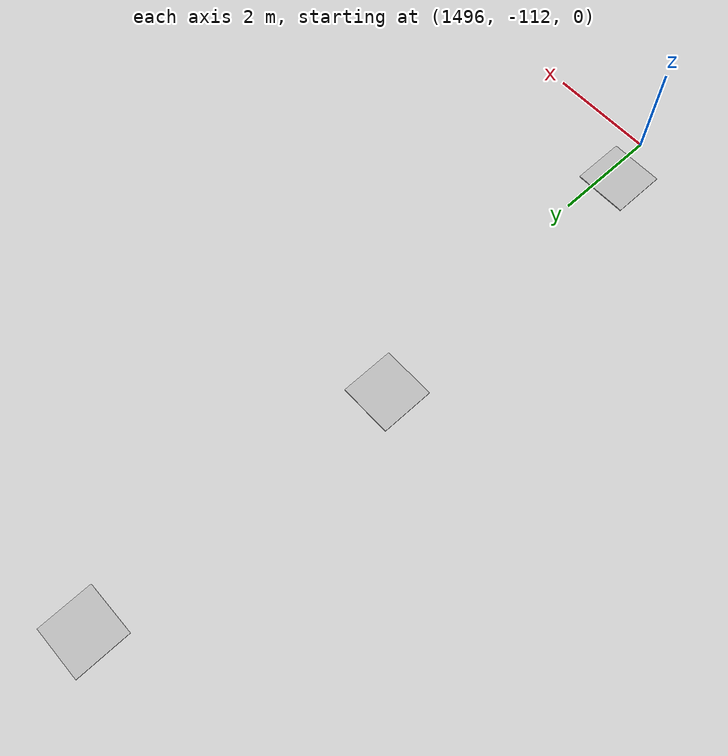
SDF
<sdf version="1.7">
 <world name="default">
  <light name="sun" type="directional">
   <pose>0 0 10 0 -0 0</pose>
   <diffuse>0.8 0.8 0.8 1</diffuse>
   <specular>0.2 0.2 0.2 1</specular>
   <attenuation>
    <range>1000</range>
    <constant>0.9</constant>
    <linear>0.01</linear>
    <quadratic>0.001</quadratic>
   </attenuation>
   <direction>-0.5 0.1 -0.9</direction>
   <spot><inner_angle>0</inner_angle><outer_angle>0</outer_angle><falloff>0</falloff></spot>
  </light>
  <model name="ground_plane">
   <static>1</static>
   <link name="link">
    <collision name="collision">
     <geometry><plane><normal>0 0 1</normal><size>100 100</size></plane></geometry>
     <surface><friction><ode><mu>100</mu><mu2>50</mu2></ode></friction></surface>
    </collision>
    <visual name="visual">
     <cast_shadows>0</cast_shadows>
     <geometry><plane><normal>0 0 1</normal><size>100 100</size></plane></geometry>
     <material>
      <script><uri>file://media/materials/scripts/gazebo.material</uri><name>Gazebo/Grey</name></script>
     </material>
    </visual>
   </link>
  </model>
  <gravity>0 0 -9.8</gravity>
  <magnetic_field>6e-06 2.3e-05 -4.2e-05</magnetic_field>
  <atmosphere type="adiabatic"/>
  <physics type="ode">
   <max_step_size>0.001</max_step_size>
   <real_time_factor>1</real_time_factor>
   <real_time_update_rate>1000</real_time_update_rate>
  </physics>
  <scene><ambient>0.4 0.4 0.4 1</ambient><background>0.7 0.7 0.7 1</background><shadows>1</shadows></scene>
  <spherical_coordinates>
   <surface_model>EARTH_WGS84</surface_model>
   <latitude_deg>0</latitude_deg>
   <longitude_deg>0</longitude_deg>
   <elevation>0</elevation>
   <heading_deg>0</heading_deg>
  </spherical_coordinates>
  <model name="target_green_clone">
   <static>1</static>
   <link name="link">
    <visual name="visual">
     <geometry><mesh><uri>model://target_green/meshes/brown.dae</uri><scale>1 4000 4000</scale></mesh></geometry>
    </visual>
   </link>
   <pose>0 0 -1 0 1.57 0</pose>
  </model>
  <model name="wooden_peg_board">
   <frame name="wooden_board::__model__" attached_to="wooden_board::base">
    <pose relative_to="__model__">0 0 0 0 -0 0</pose>
   </frame>
   <link name="wooden_board::base">
    <pose relative_to="wooden_board::__model__">0 0 0.00523 0 -0 0</pose>
    <inertial>
     <mass>0.2765</mass>
     <inertia>
      <ixx>0.0025148</ixx>
      <ixy>0</ixy>
      <ixz>0</ixz>
      <iyy>0.00024037</iyy>
      <iyz>0</iyz>
      <izz>0.00275013</izz>
     </inertia>
    </inertial>
    <collision name="collision">
     <geometry><box><size>0.1016 0.3302 0.01046</size></box></geometry>
     <surface>
      <contact>
       <poissons_ratio>0.347</poissons_ratio>
       <elastic_modulus>8.8e+09</elastic_modulus>
       <ode><kp>100000</kp><kd>100</kd><max_vel>100</max_vel><min_depth>0.001</min_depth></ode>
      </contact>
      <friction>
       <torsional>
        <coefficient>1</coefficient>
        <use_patch_radius>0</use_patch_radius>
        <surface_radius>0.01</surface_radius>
       </torsional>
      </friction>
     </surface>
    </collision>
    <visual name="visual">
     <geometry><box><size>0.1016 0.3302 0.01046</size></box></geometry>
     <material>
      <script><uri>file://media/materials/scripts/gazebo.material</uri><name>Gazebo/Wood</name></script>
     </material>
    </visual>
    <visual name="tee_nut_1">
     <pose>0 -0.116 0 0 -0 0</pose>
     <geometry><cylinder><radius>0.00635</radius><length>0.0105646</length></cylinder></geometry>
     <material>
      <script><uri>file://media/materials/scripts/gazebo.material</uri><name>Gazebo/Grey</name></script>
     </material>
    </visual>
    <visual name="tee_nut_2">
     <pose>0 -0.038 0 0 -0 0</pose>
     <geometry><cylinder><radius>0.00635</radius><length>0.0105646</length></cylinder></geometry>
     <material>
      <script><uri>file://media/materials/scripts/gazebo.material</uri><name>Gazebo/Grey</name></script>
     </material>
    </visual>
    <visual name="tee_nut_3">
     <pose>0 0.038 0 0 -0 0</pose>
     <geometry><cylinder><radius>0.00635</radius><length>0.0105646</length></cylinder></geometry>
     <material>
      <script><uri>file://media/materials/scripts/gazebo.material</uri><name>Gazebo/Grey</name></script>
     </material>
    </visual>
    <visual name="tee_nut_4">
     <pose>0 0.116 0 0 -0 0</pose>
     <geometry><cylinder><radius>0.00635</radius><length>0.0105646</length></cylinder></geometry>
     <material>
      <script><uri>file://media/materials/scripts/gazebo.material</uri><name>Gazebo/Grey</name></script>
     </material>
    </visual>
   </link>
   <frame name="peg::__model__" attached_to="peg::link">
    <pose relative_to="__model__">0 0.116 0 0 -0 0</pose>
   </frame>
   <link name="peg::link">
    <pose relative_to="peg::__model__">0 0 0.04 0 -0 0</pose>
    <inertial>
     <mass>0.0175</mass>
     <inertia>
      <ixx>9.74923e-06</ixx>
      <ixy>0</ixy>
      <ixz>0</ixz>
      <iyy>9.74923e-06</iyy>
      <iyz>0</iyz>
      <izz>8.31797e-07</izz>
     </inertia>
    </inertial>
    <collision name="collision">
     <geometry><cylinder><radius>0.00975</radius><length>0.08</length></cylinder></geometry>
     <surface>
      <contact>
       <poissons_ratio>0.347</poissons_ratio>
       <elastic_modulus>8.8e+09</elastic_modulus>
       <ode><kp>100000</kp><kd>100</kd><max_vel>100</max_vel><min_depth>0.001</min_depth></ode>
      </contact>
      <friction>
       <torsional>
        <coefficient>1</coefficient>
        <use_patch_radius>0</use_patch_radius>
        <surface_radius>0.01</surface_radius>
       </torsional>
      </friction>
     </surface>
    </collision>
    <visual name="visual">
     <geometry><cylinder><radius>0.00975</radius><length>0.08</length></cylinder></geometry>
     <material>
      <script><uri>file://media/materials/scripts/gazebo.material</uri><name>Gazebo/Wood</name></script>
     </material>
    </visual>
   </link>
   <joint name="board_peg" type="revolute">
    <parent>wooden_board::base</parent>
    <child>peg::link</child>
    <axis>
     <xyz>0 0 1</xyz>
     <limit><upper>0</upper><lower>0</lower></limit>
     <dynamics><spring_reference>0</spring_reference><spring_stiffness>0</spring_stiffness></dynamics>
    </axis>
   </joint>
   <pose>1683.38 29.4313 -0.001004 1.3e-05 -0 -1e-06</pose>
  </model>
  <model name="landing_red">
   <static>1</static>
   <link name="link">
    <visual name="visual">
     <geometry><mesh><uri>model://landing2/meshes/red.dae</uri><scale>2 2 2</scale></mesh></geometry>
    </visual>
   </link>
   <pose>1495 -105 0.2 0 1.57 0</pose>
  </model>
  <model name="landing_yellow">
   <static>1</static>
   <link name="link">
    <visual name="visual">
     <geometry><mesh><uri>model://landing2/meshes/yellow.dae</uri><scale>2 2 2</scale></mesh></geometry>
    </visual>
   </link>
   <pose>1495.23 -99 0.210884 0 1.57 0</pose>
  </model>
  <model name="landing_white">
   <static>1</static>
   <link name="link">
    <visual name="visual">
     <geometry><mesh><uri>model://landing2/meshes/white.dae</uri><scale>2 2 2</scale></mesh></geometry>
    </visual>
   </link>
   <pose>1495.23 -111 0.210884 0 1.57 0</pose>
  </model>
 </world>
</sdf>
